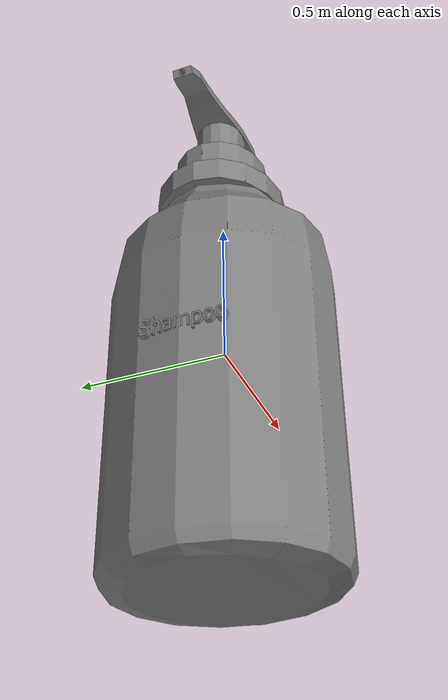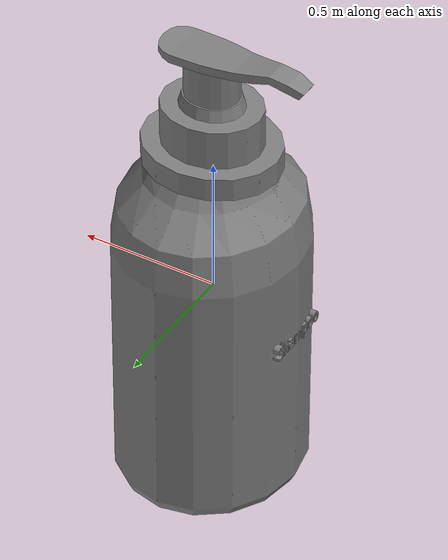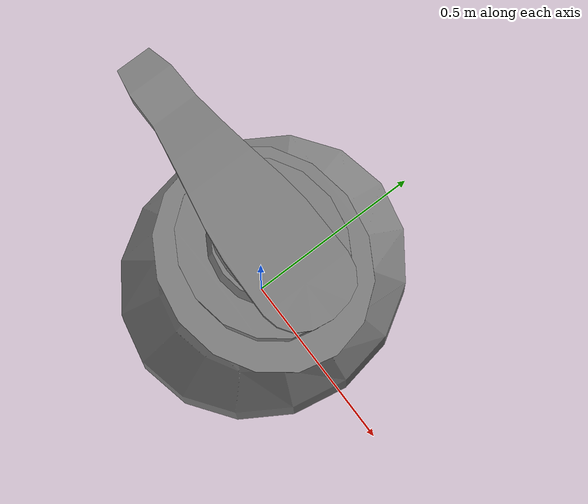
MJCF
<?xml version='1.0' encoding='UTF-8'?>
<mujoco model="partnet_d109e3b9-682b-4e13-a11d-dc57eabb03e2">
  <compiler angle="radian"/>
  <asset>
    <mesh name="original_9" content_type="model/obj" file="textured_objs/original_9.obj"/>
    <mesh name="original_7" content_type="model/obj" file="textured_objs/original_7.obj"/>
    <mesh name="original_11" content_type="model/obj" file="textured_objs/original_11.obj"/>
    <mesh name="original_10" content_type="model/obj" file="textured_objs/original_10.obj"/>
    <mesh name="original_14" content_type="model/obj" file="textured_objs/original_14.obj"/>
    <mesh name="original_4" content_type="model/obj" file="textured_objs/original_4.obj"/>
    <mesh name="original_3" content_type="model/obj" file="textured_objs/original_3.obj"/>
    <mesh name="original_2" content_type="model/obj" file="textured_objs/original_2.obj"/>
    <mesh name="original_16" content_type="model/obj" file="textured_objs/original_16.obj"/>
    <mesh name="original_8" content_type="model/obj" file="textured_objs/original_8.obj"/>
    <mesh name="original_13" content_type="model/obj" file="textured_objs/original_13.obj"/>
    <mesh name="original_5" content_type="model/obj" file="textured_objs/original_5.obj"/>
    <mesh name="original_6" content_type="model/obj" file="textured_objs/original_6.obj"/>
    <mesh name="original_15" content_type="model/obj" file="textured_objs/original_15.obj"/>
    <mesh name="original_18" content_type="model/obj" file="textured_objs/original_18.obj"/>
    <mesh name="original_17" content_type="model/obj" file="textured_objs/original_17.obj"/>
    <mesh name="original_12" content_type="model/obj" file="textured_objs/original_12.obj"/>
    <mesh name="original_1" content_type="model/obj" file="textured_objs/original_1.obj"/>
  </asset>
  <worldbody>
    <body name="base">
      <body name="link_2" quat="0.5 0.5 -0.5 -0.5">
        <geom type="mesh" mesh="original_4"/>
        <geom type="mesh" mesh="original_3"/>
        <geom type="mesh" mesh="original_2"/>
        <geom type="mesh" mesh="original_16"/>
        <geom type="mesh" mesh="original_8"/>
        <geom type="mesh" mesh="original_13"/>
        <geom type="mesh" mesh="original_5"/>
        <geom type="mesh" mesh="original_6"/>
        <geom type="mesh" mesh="original_15"/>
        <geom type="mesh" mesh="original_18"/>
        <geom type="mesh" mesh="original_17"/>
        <geom type="mesh" mesh="original_12"/>
        <geom type="mesh" mesh="original_1"/>
        <body name="link_1_helper" pos="-0.004991 0 -0.0023035">
          <inertial pos="0 0 0" mass="1e-06" diaginertia="1e-10 1e-10 1e-10"/>
          <joint name="joint_4" pos="0 0 0" axis="0 1 0" type="slide" range="0 0.01"/>
          <body name="link_1">
            <joint name="joint_1" pos="0 0 0" axis="0 1 0"/>
            <geom pos="0.004991 0 0.0023035" quat="1 0 0 0" type="mesh" mesh="original_14"/>
            <body name="link_0_helper">
              <inertial pos="0 0 0" mass="1e-06" diaginertia="1e-10 1e-10 1e-10"/>
              <joint name="joint_3" pos="0 0 0" axis="0 -1 0" type="slide" range="0 0.13"/>
              <body name="link_0">
                <joint name="joint_0" pos="0 0 0" axis="0 1 0"/>
                <geom pos="0.004991 0 0.0023035" quat="1 0 0 0" type="mesh" mesh="original_9"/>
                <geom pos="0.004991 0 0.0023035" quat="1 0 0 0" type="mesh" mesh="original_7"/>
                <geom pos="0.004991 0 0.0023035" quat="1 0 0 0" type="mesh" mesh="original_11"/>
                <geom pos="0.004991 0 0.0023035" quat="1 0 0 0" type="mesh" mesh="original_10"/>
              </body>
            </body>
          </body>
        </body>
      </body>
    </body>
  </worldbody>
</mujoco>
